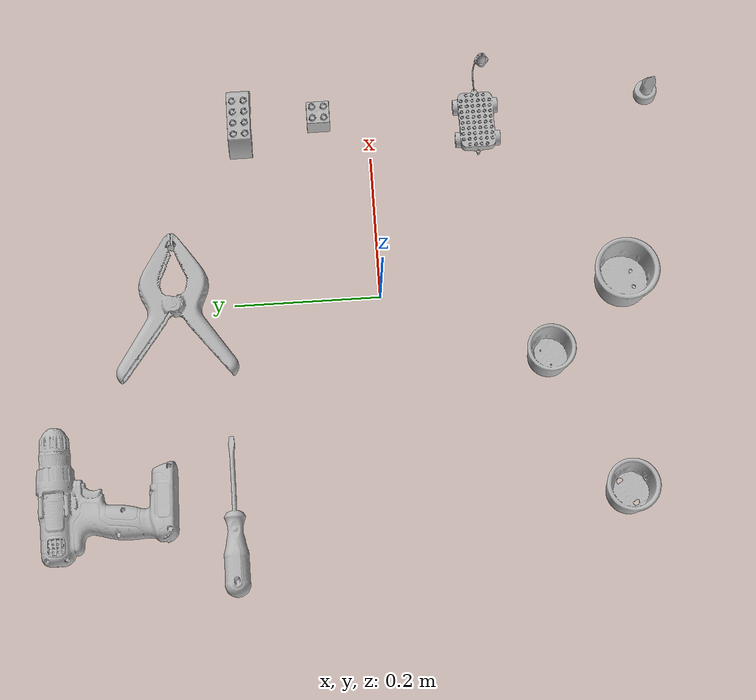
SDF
<?xml version="1.0" ?>
<sdf version="1.4">
  <world name="default">
    <light name="light1" type="point">
      <pose>0 0 1 0 0 0</pose>
      <diffuse>3 3 3 1</diffuse>
      <specular>3 3 3 1</specular>
    </light>
    <light name="light2" type="point">
      <pose>0 0.5 2 0 0 0</pose>
      <diffuse>1 1 1 1</diffuse>
      <specular>1 1 1 1</specular>
    </light>
    <light name="light3" type="point">
      <pose>0 0.5 2 0 0 0</pose>
      <diffuse>3 3 3 1</diffuse>
      <specular>3 3 3 1</specular>
    </light>
    <scene>
      <ambient>0.7 0.7 0.7</ambient>
    </scene>
    <model name="cup1">
      <link name="link_cup1">
        <collision name="default">
          <geometry>
            <mesh>
              <uri>model://d_cups/collision_meshes/collision.obj</uri>
              <scale>1.0 1.0 1.0</scale>
            </mesh>
          </geometry>
          <surface>
            <friction>
              <ode>
                <mu>0.5</mu>
                <mu2>0.5</mu2>
              </ode>
            </friction>
          </surface>
        </collision>
        <visual name="default">
          <geometry>
            <mesh>
              <uri>model://d_cups/visual_meshes/visual.dae</uri>
              <scale>1.0 1.0 1.0</scale>
            </mesh>
          </geometry>
        </visual>
        <inertial>
          <mass>0.04943045228719711</mass>
          <pose>0.0008068052702583373 0.0019117395859211683 -0.0022666507866233587 0.2401104468273406 -0.24710716259907536 0.594298245500967</pose>
          <inertia>
            <ixx>4.1384912e-05</ixx>
            <iyy>4.1265153e-05</iyy>
            <izz>3.7460377e-05</izz>
            <ixy>0</ixy>
            <ixz>0</ixz>
            <iyz>0</iyz>
          </inertia>
        </inertial>
      </link>
      <pose>-0.29000601172447205 -0.310001015663147 0.0346590057015419 -7.450579632417838e-08 -8.195637749009115e-08 -1.8626446218751524e-08</pose>
    </model>
    <model name="cup2">
      <link name="link_cup2">
        <collision name="default">
          <geometry>
            <mesh>
              <uri>model://c_cups/collision_meshes/collision.obj</uri>
              <scale>1.0 1.0 1.0</scale>
            </mesh>
          </geometry>
          <surface>
            <friction>
              <ode>
                <mu>0.5</mu>
                <mu2>0.5</mu2>
              </ode>
            </friction>
          </surface>
        </collision>
        <visual name="default">
          <geometry>
            <mesh>
              <uri>model://c_cups/visual_meshes/visual.dae</uri>
              <scale>1.0 1.0 1.0</scale>
            </mesh>
          </geometry>
        </visual>
        <inertial>
          <mass>0.02161477506160736</mass>
          <pose>0.0007237254758365452 0.002015391131862998 -0.0012750980677083135 0.3021577101392444 0.013461522825774588 -0.08771822086046323</pose>
          <inertia>
            <ixx>1.607462e-05</ixx>
            <iyy>1.5790554e-05</iyy>
            <izz>1.4215883e-05</izz>
            <ixy>0</ixy>
            <ixz>0</ixz>
            <iyz>0</iyz>
          </inertia>
        </inertial>
      </link>
      <pose>-0.09988609701395035 -0.22000344097614288 0.03345884755253792 1.3866684396659415e-05 1.3338407369480144e-05 -1.0160840105153803e-06</pose>
    </model>
    <model name="cup3">
      <link name="link_cup3">
        <collision name="default">
          <geometry>
            <mesh>
              <uri>model://g_cups/collision_meshes/collision.obj</uri>
              <scale>1.0 1.0 1.0</scale>
            </mesh>
          </geometry>
          <surface>
            <friction>
              <ode>
                <mu>0.5</mu>
                <mu2>0.5</mu2>
              </ode>
            </friction>
          </surface>
        </collision>
        <visual name="default">
          <geometry>
            <mesh>
              <uri>model://g_cups/visual_meshes/visual.dae</uri>
              <scale>1.0 1.0 1.0</scale>
            </mesh>
          </geometry>
        </visual>
        <inertial>
          <mass>0.04413851350545883</mass>
          <pose>-0.0007946275873109698 -4.206433004583232e-05 -0.002132937777787447 -0.2138199678327952 -0.31410615416341514 0.3111935262320568</pose>
          <inertia>
            <ixx>5.151955e-05</ixx>
            <iyy>5.1344283e-05</iyy>
            <izz>5.3365377e-05</izz>
            <ixy>0</ixy>
            <ixz>0</ixz>
            <iyz>0</iyz>
          </inertia>
        </inertial>
      </link>
      <pose>1.7990591004490852e-05 -0.3300015926361084 0.037202995270490646 1.8626390624332844e-08 -2.533197447709994e-07 4.805624461423969e-07</pose>
    </model>
    <model name="toy1">
      <link name="link_toy1">
        <collision name="default">
          <geometry>
            <mesh>
              <uri>model://e_lego_duplo/collision_meshes/collision.obj</uri>
              <scale>1.0 1.0 1.0</scale>
            </mesh>
          </geometry>
          <surface>
            <friction>
              <ode>
                <mu>0.5</mu>
                <mu2>0.5</mu2>
              </ode>
            </friction>
          </surface>
        </collision>
        <visual name="default">
          <geometry>
            <mesh>
              <uri>model://e_lego_duplo/visual_meshes/visual.dae</uri>
              <scale>1.0 1.0 1.0</scale>
            </mesh>
          </geometry>
        </visual>
        <inertial>
          <mass>0.08806774020195007</mass>
          <pose>0.0003256051568314433 0.00023485405836254358 0.0019521453650668263 -0.02256777049150226 -6.824370740412915e-05 -0.00762515400873393</pose>
          <inertia>
            <ixx>1.8365032e-05</ixx>
            <iyy>7.537481e-05</iyy>
            <izz>7.3399904e-05</izz>
            <ixy>0</ixy>
            <ixz>0</ixz>
            <iyz>0</iyz>
          </inertia>
        </inertial>
      </link>
      <pose>0.2601899206638336 0.17997577786445618 0.021808993071317673 -1.3347003576324559e-08 -2.8674510062224698e-08 5.8283517321312365e-06</pose>
    </model>
    <model name="toy2">
      <link name="link_toy2">
        <collision name="default">
          <geometry>
            <mesh>
              <uri>model://b_lego_duplo/collision_meshes/collision.obj</uri>
              <scale>1.0 1.0 1.0</scale>
            </mesh>
          </geometry>
          <surface>
            <friction>
              <ode>
                <mu>0.5</mu>
                <mu2>0.5</mu2>
              </ode>
            </friction>
          </surface>
        </collision>
        <visual name="default">
          <geometry>
            <mesh>
              <uri>model://b_lego_duplo/visual_meshes/visual.dae</uri>
              <scale>1.0 1.0 1.0</scale>
            </mesh>
          </geometry>
        </visual>
        <inertial>
          <mass>0.04734363779425621</mass>
          <pose>-0.00011053025809815153 -9.15254986466607e-06 0.0019294298253953457 -0.03749543151759021 -0.02635344242756168 0.4519151706388912</pose>
          <inertia>
            <ixx>9.689229e-06</ixx>
            <iyy>9.754364e-06</iyy>
            <izz>8.632791e-06</izz>
            <ixy>0</ixy>
            <ixz>0</ixz>
            <iyz>0</iyz>
          </inertia>
        </inertial>
      </link>
      <pose>0.25999483466148376 0.06995590776205063 0.021815000101923943 4.7404130302418945e-07 2.989574140872478e-07 -1.224898580124188e-05</pose>
    </model>
    <model name="toy3">
      <link name="link_toy3">
        <collision name="default">
          <geometry>
            <mesh>
              <uri>model://g_lego_duplo/collision_meshes/collision.obj</uri>
              <scale>0.5 0.5 0.5</scale>
            </mesh>
          </geometry>
          <surface>
            <friction>
              <ode>
                <mu>0.5</mu>
                <mu2>0.5</mu2>
              </ode>
            </friction>
          </surface>
        </collision>
        <visual name="default">
          <geometry>
            <mesh>
              <uri>model://g_lego_duplo/visual_meshes/visual.dae</uri>
              <scale>0.5 0.5 0.5</scale>
            </mesh>
          </geometry>
        </visual>
        <inertial>
          <mass>0.0549229197204113</mass>
          <pose>-0.02502383477985859 0.0008777315961197019 0.0019403378246352077 0.010963030367844774 0.03810824354215502 -0.09653013034360637</pose>
          <inertia>
            <ixx>1.989599e-05</ixx>
            <iyy>6.0152015e-05</iyy>
            <izz>7.525238e-05</izz>
            <ixy>0</ixy>
            <ixz>0</ixz>
            <iyz>0</iyz>
          </inertia>
        </inertial>
      </link>
      <pose>0.27035224437713623 -0.15185554325580597 0.01499682292342186 -6.254000654874803e-05 -0.003688303049796395 7.226314278528644e-05</pose>
    </model>
    <model name="toy4">
      <link name="link_toy4">
        <collision name="default">
          <geometry>
            <mesh>
              <uri>model://e_toy_airplane/collision_meshes/collision.obj</uri>
              <scale>1.0 1.0 1.0</scale>
            </mesh>
          </geometry>
          <surface>
            <friction>
              <ode>
                <mu>0.5</mu>
                <mu2>0.5</mu2>
              </ode>
            </friction>
          </surface>
        </collision>
        <visual name="default">
          <geometry>
            <mesh>
              <uri>model://e_toy_airplane/visual_meshes/visual.dae</uri>
              <scale>1.0 1.0 1.0</scale>
            </mesh>
          </geometry>
        </visual>
        <inertial>
          <mass>0.02949252724647522</mass>
          <pose>0.0001174047210952267 -2.248294731543865e-05 -0.011187205091118813 0.00551852159670192 0.009228270522190251 0.15041692690710914</pose>
          <inertia>
            <ixx>9.0014555e-06</ixx>
            <iyy>8.909378e-06</iyy>
            <izz>2.7052915e-06</izz>
            <ixy>0</ixy>
            <ixz>0</ixz>
            <iyz>0</iyz>
          </inertia>
        </inertial>
      </link>
      <pose>0.2700434625148773 -0.38993895053863525 0.03321215137839317 4.670675957530331e-05 -0.00018020835983684498 -5.238029762262456e-06</pose>
    </model>
    <model name="hardware1">
      <link name="link_hardware1">
        <collision name="default">
          <geometry>
            <mesh>
              <uri>model://power_drill/collision_meshes/collision.obj</uri>
              <scale>1.0 1.0 1.0</scale>
            </mesh>
          </geometry>
          <surface>
            <friction>
              <ode>
                <mu>0.5</mu>
                <mu2>0.5</mu2>
              </ode>
            </friction>
          </surface>
        </collision>
        <visual name="default">
          <geometry>
            <mesh>
              <uri>model://power_drill/visual_meshes/visual.dae</uri>
              <scale>1.0 1.0 1.0</scale>
            </mesh>
          </geometry>
        </visual>
        <inertial>
          <mass>0.4622694253921509</mass>
          <pose>-0.014780544675886631 0.014369423501193523 0.0012414170196279883 0.0046091653592492164 0.00407302392026691 -0.1836269379856391</pose>
          <inertia>
            <ixx>0.0018837696</ixx>
            <iyy>0.00074116525</iyy>
            <izz>0.0024878501</izz>
            <ixy>0</ixy>
            <ixz>0</ixz>
            <iyz>0</iyz>
          </inertia>
        </inertial>
      </link>
      <pose>-0.2509716749191284 0.3804374933242798 0.02731245569884777 -0.0303059924661874 -0.047252834537501585 3.229232154773588e-05</pose>
    </model>
    <model name="hardware2">
      <link name="link_hardware2">
        <collision name="default">
          <geometry>
            <mesh>
              <uri>model://flat_screwdriver/collision_meshes/collision.obj</uri>
              <scale>1.0 1.0 1.0</scale>
            </mesh>
          </geometry>
          <surface>
            <friction>
              <ode>
                <mu>0.5</mu>
                <mu2>0.5</mu2>
              </ode>
            </friction>
          </surface>
        </collision>
        <visual name="default">
          <geometry>
            <mesh>
              <uri>model://flat_screwdriver/visual_meshes/visual.dae</uri>
              <scale>1.0 1.0 1.0</scale>
            </mesh>
          </geometry>
        </visual>
        <inertial>
          <mass>0.07028686255216599</mass>
          <pose>-0.0489187091588974 -0.0006576801533810794 -0.0006140916375443339 -0.5613212056153659 -0.0032337294395619258 0.006982277044942129</pose>
          <inertia>
            <ixx>8.3043415e-06</ixx>
            <iyy>0.00010542549</iyy>
            <izz>0.00010537667</izz>
            <ixy>0</ixy>
            <ixz>0</ixz>
            <iyz>0</iyz>
          </inertia>
        </inertial>
      </link>
      <pose>-0.2910260856151581 0.21419323980808258 0.015338586643338203 -0.21441249079608765 0.04069550878430605 -0.0073850004347390105</pose>
    </model>
    <model name="hardware3">
      <link name="link_hardware3">
        <collision name="default">
          <geometry>
            <mesh>
              <uri>model://extra_large_clamp/collision_meshes/collision.obj</uri>
              <scale>1.0 1.0 1.0</scale>
            </mesh>
          </geometry>
          <surface>
            <friction>
              <ode>
                <mu>0.5</mu>
                <mu2>0.5</mu2>
              </ode>
            </friction>
          </surface>
        </collision>
        <visual name="default">
          <geometry>
            <mesh>
              <uri>model://extra_large_clamp/visual_meshes/visual.dae</uri>
              <scale>1.0 1.0 1.0</scale>
            </mesh>
          </geometry>
        </visual>
        <inertial>
          <mass>0.19051048159599304</mass>
          <pose>0.0032320222817361355 -7.615413051098585e-05 0.0003172157157678157 0.013786989477745152 -0.0005066809054022428 -0.0008935736893705532</pose>
          <inertia>
            <ixx>0.00028954487</ixx>
            <iyy>0.0004985067</iyy>
            <izz>0.0007616155</izz>
            <ixy>0</ixy>
            <ixz>0</ixz>
            <iyz>0</iyz>
          </inertia>
        </inertial>
      </link>
      <pose>0.0002560187131166458 0.2816607356071472 0.018067503347992897 -0.024375389607663587 3.484059166811538e-05 6.237413918334692e-05</pose>
    </model>
  </world>
</sdf>
